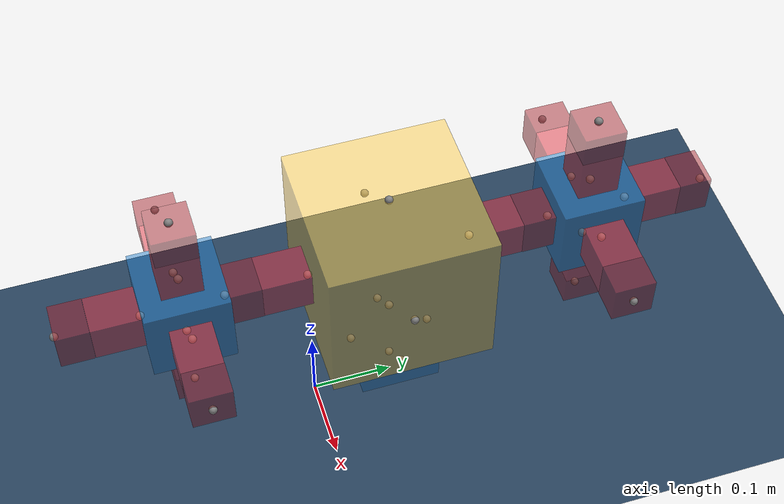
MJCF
<mujoco model="MuJoCo Model">
  <compiler angle="radian"/>

  <option integrator="implicitfast"/>

  <visual>
    <global offwidth="1280" offheight="960"/>
  </visual>

  <default>
    <default class="robot-main">
      <default class="robot-brick-bottom-main"/>
      <default class="robot-2-0-main"/>
      <default class="robot-3-0-main"/>
      <default class="robot-4-0-main"/>
      <default class="robot-5-2-main"/>
      <default class="robot-6-3-main"/>
      <default class="robot-7-4-main"/>
      <default class="robot-8-5-main"/>
      <default class="robot-9-1-main"/>
      <default class="robot-10-1-main"/>
      <default class="robot-11-0-main"/>
      <default class="robot-12-2-main"/>
      <default class="robot-13-3-main"/>
      <default class="robot-14-4-main"/>
      <default class="robot-15-5-main"/>
    </default>
  </default>

  <asset>
    <texture type="2d" colorspace="auto" name="grid" builtin="checker" rgb1="0.1 0.2 0.3" rgb2="0.2 0.3 0.4" width="600" height="600"/>
    <material name="grid" texture="grid" texuniform="true" texrepeat="3 3" reflectance="0.2"/>
  </asset>

  <worldbody>
    <geom name="floor" size="1 1 0.1" type="plane" material="grid"/>
    <site pos="0 0 0.236603"/>
    <light name="light" pos="0 0 1" dir="0 0 -1" castshadow="false"/>
    <body name="robot-world" pos="0 0 0.236603">
      <joint type="free"/>
      <body name="robot-core">
        <geom name="robot-core" size="0.1 0.1 0.1" pos="0 0.1 0" type="box" mass="1" rgba="0.992157 0.792157 0.25098 0.5"/>
        <site name="robot-core-front" pos="0 0.2 0"/>
        <site name="robot-core-back" pos="0 0 0" quat="0 0 0 1"/>
        <site name="robot-core-left" pos="-0.1 0.1 0" quat="0.707107 0 0 0.707107"/>
        <site name="robot-core-right" pos="0.1 0.1 0" quat="-0.707107 0 0 0.707107"/>
        <site name="robot-core-top" pos="0 0.1 0.1" quat="0.707107 0.707107 0 0"/>
        <site name="robot-core-bottom" pos="0 0.1 -0.1" quat="0 0 -0.707107 0.707107"/>
        <body name="robot-brick-bottom-core" pos="0 0.1 -0.1" quat="0 0 -0.707107 0.707107">
          <geom name="robot-brick-bottom-core" size="0.05 0.05 0.05" pos="0 0.05 0" type="box" mass="0.055" rgba="0.109804 0.466667 0.764706 0.5"/>
          <site name="robot-brick-bottom-core-front" pos="0 0.1 0"/>
          <site name="robot-brick-bottom-core-left" pos="-0.05 0.05 0" quat="0.707107 0 0 0.707107"/>
          <site name="robot-brick-bottom-core-right" pos="0.05 0.05 0" quat="-0.707107 0 0 0.707107"/>
          <site name="robot-brick-bottom-core-top" pos="0 0.05 0.05" quat="0.707107 0.707107 0 0"/>
          <site name="robot-brick-bottom-core-bottom" pos="0 0.05 -0.05" quat="0 0 -0.707107 0.707107"/>
        </body>
        <body name="robot-2-0-hinge" pos="0 0.2 0">
          <body name="robot-2-0-stator" pos="0 0.03 0">
            <geom name="robot-2-0-stator" size="0.02475 0.0297 0.02475" type="box" mass="0.02" rgba="0.87451 0.160784 0.207843 0.5"/>
          </body>
          <body name="robot-2-0-rotor" pos="0 0.08 0">
            <joint name="robot-2-0-servo" pos="0 -0.02 0" axis="0 0 1"/>
            <geom name="robot-2-0-rotor" size="0.025 0.02 0.025" type="box" mass="0.04" rgba="0.627451 0.0941176 0.129412 0.5"/>
            <site name="robot-2-0-hinge-front" pos="0 0.02 0"/>
            <body name="robot-3-0-core" pos="0 0.02 0">
              <geom name="robot-3-0-core" size="0.05 0.05 0.05" pos="0 0.05 0" type="box" mass="0.055" rgba="0.109804 0.466667 0.764706 0.5"/>
              <site name="robot-3-0-core-front" pos="0 0.1 0"/>
              <site name="robot-3-0-core-left" pos="-0.05 0.05 0" quat="0.707107 0 0 0.707107"/>
              <site name="robot-3-0-core-right" pos="0.05 0.05 0" quat="-0.707107 0 0 0.707107"/>
              <site name="robot-3-0-core-top" pos="0 0.05 0.05" quat="0.707107 0.707107 0 0"/>
              <site name="robot-3-0-core-bottom" pos="0 0.05 -0.05" quat="0 0 -0.707107 0.707107"/>
              <body name="robot-4-0-hinge" pos="0 0.1 0">
                <body name="robot-4-0-stator" pos="0 0.03 0">
                  <geom name="robot-4-0-stator" size="0.02475 0.0297 0.02475" type="box" mass="0.02" rgba="0.87451 0.160784 0.207843 0.5"/>
                </body>
                <body name="robot-4-0-rotor" pos="0 0.08 0">
                  <joint name="robot-4-0-servo" pos="0 -0.02 0" axis="0 0 1"/>
                  <geom name="robot-4-0-rotor" size="0.025 0.02 0.025" type="box" mass="0.04" rgba="0.627451 0.0941176 0.129412 0.5"/>
                  <site name="robot-4-0-hinge-front" pos="0 0.02 0"/>
                </body>
              </body>
              <body name="robot-5-2-hinge" pos="0.05 0.05 0" quat="-0.707107 0 0 0.707107">
                <body name="robot-5-2-stator" pos="0 0.03 0">
                  <geom name="robot-5-2-stator" size="0.02475 0.0297 0.02475" type="box" mass="0.02" rgba="0.87451 0.160784 0.207843 0.5"/>
                </body>
                <body name="robot-5-2-rotor" pos="0 0.08 0">
                  <joint name="robot-5-2-servo" pos="0 -0.02 0" axis="0 0 1"/>
                  <geom name="robot-5-2-rotor" size="0.025 0.02 0.025" type="box" mass="0.04" rgba="0.627451 0.0941176 0.129412 0.5"/>
                  <site name="robot-5-2-hinge-front" pos="0 0.02 0"/>
                </body>
              </body>
              <body name="robot-6-3-hinge" pos="-0.05 0.05 0" quat="0.707107 0 0 0.707107">
                <body name="robot-6-3-stator" pos="0 0.03 0">
                  <geom name="robot-6-3-stator" size="0.02475 0.0297 0.02475" type="box" mass="0.02" rgba="0.87451 0.160784 0.207843 0.5"/>
                </body>
                <body name="robot-6-3-rotor" pos="0 0.08 0">
                  <joint name="robot-6-3-servo" pos="0 -0.02 0" axis="0 0 1"/>
                  <geom name="robot-6-3-rotor" size="0.025 0.02 0.025" type="box" mass="0.04" rgba="0.627451 0.0941176 0.129412 0.5"/>
                  <site name="robot-6-3-hinge-front" pos="0 0.02 0"/>
                </body>
              </body>
              <body name="robot-7-4-hinge" pos="0 0.05 0.05" quat="0.707107 0.707107 0 0">
                <body name="robot-7-4-stator" pos="0 0.03 0">
                  <geom name="robot-7-4-stator" size="0.02475 0.0297 0.02475" type="box" mass="0.02" rgba="0.87451 0.160784 0.207843 0.5"/>
                </body>
                <body name="robot-7-4-rotor" pos="0 0.08 0">
                  <joint name="robot-7-4-servo" pos="0 -0.02 0" axis="0 0 1"/>
                  <geom name="robot-7-4-rotor" size="0.025 0.02 0.025" type="box" mass="0.04" rgba="0.627451 0.0941176 0.129412 0.5"/>
                  <site name="robot-7-4-hinge-front" pos="0 0.02 0"/>
                </body>
              </body>
              <body name="robot-8-5-hinge" pos="0 0.05 -0.05" quat="0 0 -0.707107 0.707107">
                <body name="robot-8-5-stator" pos="0 0.03 0">
                  <geom name="robot-8-5-stator" size="0.02475 0.0297 0.02475" type="box" mass="0.02" rgba="0.87451 0.160784 0.207843 0.5"/>
                </body>
                <body name="robot-8-5-rotor" pos="0 0.08 0">
                  <joint name="robot-8-5-servo" pos="0 -0.02 0" axis="0 0 1"/>
                  <geom name="robot-8-5-rotor" size="0.025 0.02 0.025" type="box" mass="0.04" rgba="0.627451 0.0941176 0.129412 0.5"/>
                  <site name="robot-8-5-hinge-front" pos="0 0.02 0"/>
                </body>
              </body>
            </body>
          </body>
        </body>
        <body name="robot-9-1-hinge" quat="0 0 0 1">
          <body name="robot-9-1-stator" pos="0 0.03 0">
            <geom name="robot-9-1-stator" size="0.02475 0.0297 0.02475" type="box" mass="0.02" rgba="0.87451 0.160784 0.207843 0.5"/>
          </body>
          <body name="robot-9-1-rotor" pos="0 0.08 0">
            <joint name="robot-9-1-servo" pos="0 -0.02 0" axis="0 0 1"/>
            <geom name="robot-9-1-rotor" size="0.025 0.02 0.025" type="box" mass="0.04" rgba="0.627451 0.0941176 0.129412 0.5"/>
            <site name="robot-9-1-hinge-front" pos="0 0.02 0"/>
            <body name="robot-10-1-core" pos="0 0.02 0">
              <geom name="robot-10-1-core" size="0.05 0.05 0.05" pos="0 0.05 0" type="box" mass="0.055" rgba="0.109804 0.466667 0.764706 0.5"/>
              <site name="robot-10-1-core-front" pos="0 0.1 0"/>
              <site name="robot-10-1-core-left" pos="-0.05 0.05 0" quat="0.707107 0 0 0.707107"/>
              <site name="robot-10-1-core-right" pos="0.05 0.05 0" quat="-0.707107 0 0 0.707107"/>
              <site name="robot-10-1-core-top" pos="0 0.05 0.05" quat="0.707107 0.707107 0 0"/>
              <site name="robot-10-1-core-bottom" pos="0 0.05 -0.05" quat="0 0 -0.707107 0.707107"/>
              <body name="robot-11-0-hinge" pos="0 0.1 0">
                <body name="robot-11-0-stator" pos="0 0.03 0">
                  <geom name="robot-11-0-stator" size="0.02475 0.0297 0.02475" type="box" mass="0.02" rgba="0.87451 0.160784 0.207843 0.5"/>
                </body>
                <body name="robot-11-0-rotor" pos="0 0.08 0">
                  <joint name="robot-11-0-servo" pos="0 -0.02 0" axis="0 0 1"/>
                  <geom name="robot-11-0-rotor" size="0.025 0.02 0.025" type="box" mass="0.04" rgba="0.627451 0.0941176 0.129412 0.5"/>
                  <site name="robot-11-0-hinge-front" pos="0 0.02 0"/>
                </body>
              </body>
              <body name="robot-12-2-hinge" pos="0.05 0.05 0" quat="-0.707107 0 0 0.707107">
                <body name="robot-12-2-stator" pos="0 0.03 0">
                  <geom name="robot-12-2-stator" size="0.02475 0.0297 0.02475" type="box" mass="0.02" rgba="0.87451 0.160784 0.207843 0.5"/>
                </body>
                <body name="robot-12-2-rotor" pos="0 0.08 0">
                  <joint name="robot-12-2-servo" pos="0 -0.02 0" axis="0 0 1"/>
                  <geom name="robot-12-2-rotor" size="0.025 0.02 0.025" type="box" mass="0.04" rgba="0.627451 0.0941176 0.129412 0.5"/>
                  <site name="robot-12-2-hinge-front" pos="0 0.02 0"/>
                </body>
              </body>
              <body name="robot-13-3-hinge" pos="-0.05 0.05 0" quat="0.707107 0 0 0.707107">
                <body name="robot-13-3-stator" pos="0 0.03 0">
                  <geom name="robot-13-3-stator" size="0.02475 0.0297 0.02475" type="box" mass="0.02" rgba="0.87451 0.160784 0.207843 0.5"/>
                </body>
                <body name="robot-13-3-rotor" pos="0 0.08 0">
                  <joint name="robot-13-3-servo" pos="0 -0.02 0" axis="0 0 1"/>
                  <geom name="robot-13-3-rotor" size="0.025 0.02 0.025" type="box" mass="0.04" rgba="0.627451 0.0941176 0.129412 0.5"/>
                  <site name="robot-13-3-hinge-front" pos="0 0.02 0"/>
                </body>
              </body>
              <body name="robot-14-4-hinge" pos="0 0.05 0.05" quat="0.707107 0.707107 0 0">
                <body name="robot-14-4-stator" pos="0 0.03 0">
                  <geom name="robot-14-4-stator" size="0.02475 0.0297 0.02475" type="box" mass="0.02" rgba="0.87451 0.160784 0.207843 0.5"/>
                </body>
                <body name="robot-14-4-rotor" pos="0 0.08 0">
                  <joint name="robot-14-4-servo" pos="0 -0.02 0" axis="0 0 1"/>
                  <geom name="robot-14-4-rotor" size="0.025 0.02 0.025" type="box" mass="0.04" rgba="0.627451 0.0941176 0.129412 0.5"/>
                  <site name="robot-14-4-hinge-front" pos="0 0.02 0"/>
                </body>
              </body>
              <body name="robot-15-5-hinge" pos="0 0.05 -0.05" quat="0 0 -0.707107 0.707107">
                <body name="robot-15-5-stator" pos="0 0.03 0">
                  <geom name="robot-15-5-stator" size="0.02475 0.0297 0.02475" type="box" mass="0.02" rgba="0.87451 0.160784 0.207843 0.5"/>
                </body>
                <body name="robot-15-5-rotor" pos="0 0.08 0">
                  <joint name="robot-15-5-servo" pos="0 -0.02 0" axis="0 0 1"/>
                  <geom name="robot-15-5-rotor" size="0.025 0.02 0.025" type="box" mass="0.04" rgba="0.627451 0.0941176 0.129412 0.5"/>
                  <site name="robot-15-5-hinge-front" pos="0 0.02 0"/>
                </body>
              </body>
            </body>
          </body>
        </body>
      </body>
    </body>
  </worldbody>

  <contact>
    <exclude body1="robot-2-0-stator" body2="robot-2-0-rotor"/>
    <exclude body1="robot-4-0-stator" body2="robot-4-0-rotor"/>
    <exclude body1="robot-5-2-stator" body2="robot-5-2-rotor"/>
    <exclude body1="robot-6-3-stator" body2="robot-6-3-rotor"/>
    <exclude body1="robot-7-4-stator" body2="robot-7-4-rotor"/>
    <exclude body1="robot-8-5-stator" body2="robot-8-5-rotor"/>
    <exclude body1="robot-9-1-stator" body2="robot-9-1-rotor"/>
    <exclude body1="robot-11-0-stator" body2="robot-11-0-rotor"/>
    <exclude body1="robot-12-2-stator" body2="robot-12-2-rotor"/>
    <exclude body1="robot-13-3-stator" body2="robot-13-3-rotor"/>
    <exclude body1="robot-14-4-stator" body2="robot-14-4-rotor"/>
    <exclude body1="robot-15-5-stator" body2="robot-15-5-rotor"/>
  </contact>

  <actuator>
    <general name="robot-2-0-servo" joint="robot-2-0-servo" ctrlrange="-3.14159 -3.14159" dynprm="0 0 0 0 0 0 0 0 0 0" biastype="affine" biasprm="0 -1 -1"/>
    <general name="robot-4-0-servo" joint="robot-4-0-servo" ctrlrange="-3.14159 -3.14159" dynprm="0 0 0 0 0 0 0 0 0 0" biastype="affine" biasprm="0 -1 -1"/>
    <general name="robot-5-2-servo" joint="robot-5-2-servo" ctrlrange="-3.14159 -3.14159" dynprm="0 0 0 0 0 0 0 0 0 0" biastype="affine" biasprm="0 -1 -1"/>
    <general name="robot-6-3-servo" joint="robot-6-3-servo" ctrlrange="-3.14159 -3.14159" dynprm="0 0 0 0 0 0 0 0 0 0" biastype="affine" biasprm="0 -1 -1"/>
    <general name="robot-7-4-servo" joint="robot-7-4-servo" ctrlrange="-3.14159 -3.14159" dynprm="0 0 0 0 0 0 0 0 0 0" biastype="affine" biasprm="0 -1 -1"/>
    <general name="robot-8-5-servo" joint="robot-8-5-servo" ctrlrange="-3.14159 -3.14159" dynprm="0 0 0 0 0 0 0 0 0 0" biastype="affine" biasprm="0 -1 -1"/>
    <general name="robot-9-1-servo" joint="robot-9-1-servo" ctrlrange="-3.14159 -3.14159" dynprm="0 0 0 0 0 0 0 0 0 0" biastype="affine" biasprm="0 -1 -1"/>
    <general name="robot-11-0-servo" joint="robot-11-0-servo" ctrlrange="-3.14159 -3.14159" dynprm="0 0 0 0 0 0 0 0 0 0" biastype="affine" biasprm="0 -1 -1"/>
    <general name="robot-12-2-servo" joint="robot-12-2-servo" ctrlrange="-3.14159 -3.14159" dynprm="0 0 0 0 0 0 0 0 0 0" biastype="affine" biasprm="0 -1 -1"/>
    <general name="robot-13-3-servo" joint="robot-13-3-servo" ctrlrange="-3.14159 -3.14159" dynprm="0 0 0 0 0 0 0 0 0 0" biastype="affine" biasprm="0 -1 -1"/>
    <general name="robot-14-4-servo" joint="robot-14-4-servo" ctrlrange="-3.14159 -3.14159" dynprm="0 0 0 0 0 0 0 0 0 0" biastype="affine" biasprm="0 -1 -1"/>
    <general name="robot-15-5-servo" joint="robot-15-5-servo" ctrlrange="-3.14159 -3.14159" dynprm="0 0 0 0 0 0 0 0 0 0" biastype="affine" biasprm="0 -1 -1"/>
  </actuator>
</mujoco>
